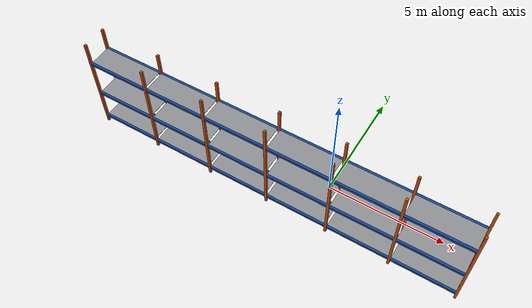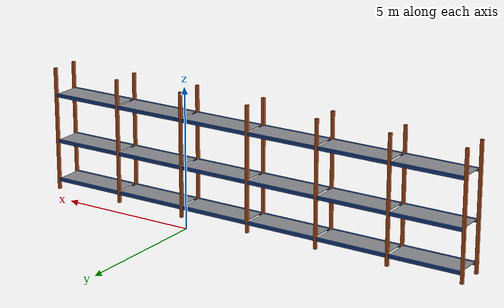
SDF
<sdf version="1.9">
 <world name="warehouse">
  <model name="rack_B">
   <static>true</static>
   <link name="frame">
    <visual name="up_0_f_v">
     <pose>-10 -1.85 2.25 0 0 0</pose>
     <geometry><box><size>0.1 0.1 4.5</size></box></geometry>
     <material>
      <ambient>0.36 0.15 0.04 1</ambient>
      <diffuse>0.72 0.3 0.08 1</diffuse>
      <specular>0.05 0.05 0.05 1</specular>
      <pbr><metal><metalness>0.0</metalness><roughness>0.9</roughness></metal></pbr>
     </material>
    </visual>
    <collision name="up_0_f_c">
     <pose>-10 -1.85 2.25 0 0 0</pose>
     <geometry><box><size>0.1 0.1 4.5</size></box></geometry>
    </collision>
    <visual name="up_0_b_v">
     <pose>-10 -0.85 2.25 0 0 0</pose>
     <geometry><box><size>0.1 0.1 4.5</size></box></geometry>
     <material>
      <ambient>0.36 0.15 0.04 1</ambient>
      <diffuse>0.72 0.3 0.08 1</diffuse>
      <specular>0.05 0.05 0.05 1</specular>
      <pbr><metal><metalness>0.0</metalness><roughness>0.9</roughness></metal></pbr>
     </material>
    </visual>
    <collision name="up_0_b_c">
     <pose>-10 -0.85 2.25 0 0 0</pose>
     <geometry><box><size>0.1 0.1 4.5</size></box></geometry>
    </collision>
    <visual name="up_1_f_v">
     <pose>-7.3 -1.85 2.25 0 0 0</pose>
     <geometry><box><size>0.1 0.1 4.5</size></box></geometry>
     <material>
      <ambient>0.36 0.15 0.04 1</ambient>
      <diffuse>0.72 0.3 0.08 1</diffuse>
      <specular>0.05 0.05 0.05 1</specular>
      <pbr><metal><metalness>0.0</metalness><roughness>0.9</roughness></metal></pbr>
     </material>
    </visual>
    <collision name="up_1_f_c">
     <pose>-7.3 -1.85 2.25 0 0 0</pose>
     <geometry><box><size>0.1 0.1 4.5</size></box></geometry>
    </collision>
    <visual name="up_1_b_v">
     <pose>-7.3 -0.85 2.25 0 0 0</pose>
     <geometry><box><size>0.1 0.1 4.5</size></box></geometry>
     <material>
      <ambient>0.36 0.15 0.04 1</ambient>
      <diffuse>0.72 0.3 0.08 1</diffuse>
      <specular>0.05 0.05 0.05 1</specular>
      <pbr><metal><metalness>0.0</metalness><roughness>0.9</roughness></metal></pbr>
     </material>
    </visual>
    <collision name="up_1_b_c">
     <pose>-7.3 -0.85 2.25 0 0 0</pose>
     <geometry><box><size>0.1 0.1 4.5</size></box></geometry>
    </collision>
    <visual name="up_2_f_v">
     <pose>-4.6 -1.85 2.25 0 0 0</pose>
     <geometry><box><size>0.1 0.1 4.5</size></box></geometry>
     <material>
      <ambient>0.36 0.15 0.04 1</ambient>
      <diffuse>0.72 0.3 0.08 1</diffuse>
      <specular>0.05 0.05 0.05 1</specular>
      <pbr><metal><metalness>0.0</metalness><roughness>0.9</roughness></metal></pbr>
     </material>
    </visual>
    <collision name="up_2_f_c">
     <pose>-4.6 -1.85 2.25 0 0 0</pose>
     <geometry><box><size>0.1 0.1 4.5</size></box></geometry>
    </collision>
    <visual name="up_2_b_v">
     <pose>-4.6 -0.85 2.25 0 0 0</pose>
     <geometry><box><size>0.1 0.1 4.5</size></box></geometry>
     <material>
      <ambient>0.36 0.15 0.04 1</ambient>
      <diffuse>0.72 0.3 0.08 1</diffuse>
      <specular>0.05 0.05 0.05 1</specular>
      <pbr><metal><metalness>0.0</metalness><roughness>0.9</roughness></metal></pbr>
     </material>
    </visual>
    <collision name="up_2_b_c">
     <pose>-4.6 -0.85 2.25 0 0 0</pose>
     <geometry><box><size>0.1 0.1 4.5</size></box></geometry>
    </collision>
    <visual name="up_3_f_v">
     <pose>-1.9 -1.85 2.25 0 0 0</pose>
     <geometry><box><size>0.1 0.1 4.5</size></box></geometry>
     <material>
      <ambient>0.36 0.15 0.04 1</ambient>
      <diffuse>0.72 0.3 0.08 1</diffuse>
      <specular>0.05 0.05 0.05 1</specular>
      <pbr><metal><metalness>0.0</metalness><roughness>0.9</roughness></metal></pbr>
     </material>
    </visual>
    <collision name="up_3_f_c">
     <pose>-1.9 -1.85 2.25 0 0 0</pose>
     <geometry><box><size>0.1 0.1 4.5</size></box></geometry>
    </collision>
    <visual name="up_3_b_v">
     <pose>-1.9 -0.85 2.25 0 0 0</pose>
     <geometry><box><size>0.1 0.1 4.5</size></box></geometry>
     <material>
      <ambient>0.36 0.15 0.04 1</ambient>
      <diffuse>0.72 0.3 0.08 1</diffuse>
      <specular>0.05 0.05 0.05 1</specular>
      <pbr><metal><metalness>0.0</metalness><roughness>0.9</roughness></metal></pbr>
     </material>
    </visual>
    <collision name="up_3_b_c">
     <pose>-1.9 -0.85 2.25 0 0 0</pose>
     <geometry><box><size>0.1 0.1 4.5</size></box></geometry>
    </collision>
    <visual name="up_4_f_v">
     <pose>0.8 -1.85 2.25 0 0 0</pose>
     <geometry><box><size>0.1 0.1 4.5</size></box></geometry>
     <material>
      <ambient>0.36 0.15 0.04 1</ambient>
      <diffuse>0.72 0.3 0.08 1</diffuse>
      <specular>0.05 0.05 0.05 1</specular>
      <pbr><metal><metalness>0.0</metalness><roughness>0.9</roughness></metal></pbr>
     </material>
    </visual>
    <collision name="up_4_f_c">
     <pose>0.8 -1.85 2.25 0 0 0</pose>
     <geometry><box><size>0.1 0.1 4.5</size></box></geometry>
    </collision>
    <visual name="up_4_b_v">
     <pose>0.8 -0.85 2.25 0 0 0</pose>
     <geometry><box><size>0.1 0.1 4.5</size></box></geometry>
     <material>
      <ambient>0.36 0.15 0.04 1</ambient>
      <diffuse>0.72 0.3 0.08 1</diffuse>
      <specular>0.05 0.05 0.05 1</specular>
      <pbr><metal><metalness>0.0</metalness><roughness>0.9</roughness></metal></pbr>
     </material>
    </visual>
    <collision name="up_4_b_c">
     <pose>0.8 -0.85 2.25 0 0 0</pose>
     <geometry><box><size>0.1 0.1 4.5</size></box></geometry>
    </collision>
    <visual name="up_5_f_v">
     <pose>3.5 -1.85 2.25 0 0 0</pose>
     <geometry><box><size>0.1 0.1 4.5</size></box></geometry>
     <material>
      <ambient>0.36 0.15 0.04 1</ambient>
      <diffuse>0.72 0.3 0.08 1</diffuse>
      <specular>0.05 0.05 0.05 1</specular>
      <pbr><metal><metalness>0.0</metalness><roughness>0.9</roughness></metal></pbr>
     </material>
    </visual>
    <collision name="up_5_f_c">
     <pose>3.5 -1.85 2.25 0 0 0</pose>
     <geometry><box><size>0.1 0.1 4.5</size></box></geometry>
    </collision>
    <visual name="up_5_b_v">
     <pose>3.5 -0.85 2.25 0 0 0</pose>
     <geometry><box><size>0.1 0.1 4.5</size></box></geometry>
     <material>
      <ambient>0.36 0.15 0.04 1</ambient>
      <diffuse>0.72 0.3 0.08 1</diffuse>
      <specular>0.05 0.05 0.05 1</specular>
      <pbr><metal><metalness>0.0</metalness><roughness>0.9</roughness></metal></pbr>
     </material>
    </visual>
    <collision name="up_5_b_c">
     <pose>3.5 -0.85 2.25 0 0 0</pose>
     <geometry><box><size>0.1 0.1 4.5</size></box></geometry>
    </collision>
    <visual name="up_6_f_v">
     <pose>6.2 -1.85 2.25 0 0 0</pose>
     <geometry><box><size>0.1 0.1 4.5</size></box></geometry>
     <material>
      <ambient>0.36 0.15 0.04 1</ambient>
      <diffuse>0.72 0.3 0.08 1</diffuse>
      <specular>0.05 0.05 0.05 1</specular>
      <pbr><metal><metalness>0.0</metalness><roughness>0.9</roughness></metal></pbr>
     </material>
    </visual>
    <collision name="up_6_f_c">
     <pose>6.2 -1.85 2.25 0 0 0</pose>
     <geometry><box><size>0.1 0.1 4.5</size></box></geometry>
    </collision>
    <visual name="up_6_b_v">
     <pose>6.2 -0.85 2.25 0 0 0</pose>
     <geometry><box><size>0.1 0.1 4.5</size></box></geometry>
     <material>
      <ambient>0.36 0.15 0.04 1</ambient>
      <diffuse>0.72 0.3 0.08 1</diffuse>
      <specular>0.05 0.05 0.05 1</specular>
      <pbr><metal><metalness>0.0</metalness><roughness>0.9</roughness></metal></pbr>
     </material>
    </visual>
    <collision name="up_6_b_c">
     <pose>6.2 -0.85 2.25 0 0 0</pose>
     <geometry><box><size>0.1 0.1 4.5</size></box></geometry>
    </collision>
    <visual name="beam_0_0_f_v">
     <pose>-8.65 -1.85 0.35 0 0 0</pose>
     <geometry><box><size>2.6 0.1 0.1</size></box></geometry>
     <material>
      <ambient>0.05 0.13 0.275 1</ambient>
      <diffuse>0.1 0.26 0.55 1</diffuse>
      <specular>0.05 0.05 0.05 1</specular>
      <pbr><metal><metalness>0.0</metalness><roughness>0.9</roughness></metal></pbr>
     </material>
    </visual>
    <collision name="beam_0_0_f_c">
     <pose>-8.65 -1.85 0.35 0 0 0</pose>
     <geometry><box><size>2.6 0.1 0.1</size></box></geometry>
    </collision>
    <visual name="beam_0_0_b_v">
     <pose>-8.65 -0.85 0.35 0 0 0</pose>
     <geometry><box><size>2.6 0.1 0.1</size></box></geometry>
     <material>
      <ambient>0.05 0.13 0.275 1</ambient>
      <diffuse>0.1 0.26 0.55 1</diffuse>
      <specular>0.05 0.05 0.05 1</specular>
      <pbr><metal><metalness>0.0</metalness><roughness>0.9</roughness></metal></pbr>
     </material>
    </visual>
    <collision name="beam_0_0_b_c">
     <pose>-8.65 -0.85 0.35 0 0 0</pose>
     <geometry><box><size>2.6 0.1 0.1</size></box></geometry>
    </collision>
    <visual name="deck_0_0_v">
     <pose>-8.65 -1.35 0.39 0 0 0</pose>
     <geometry><box><size>2.6 0.9 0.02</size></box></geometry>
     <material>
      <ambient>0.275 0.28 0.29 1</ambient>
      <diffuse>0.55 0.56 0.58 1</diffuse>
      <specular>0.05 0.05 0.05 1</specular>
      <pbr><metal><metalness>0.0</metalness><roughness>0.9</roughness></metal></pbr>
     </material>
    </visual>
    <collision name="deck_0_0_c">
     <pose>-8.65 -1.35 0.39 0 0 0</pose>
     <geometry><box><size>2.6 0.9 0.02</size></box></geometry>
    </collision>
    <visual name="beam_0_1_f_v">
     <pose>-5.95 -1.85 0.35 0 0 0</pose>
     <geometry><box><size>2.6 0.1 0.1</size></box></geometry>
     <material>
      <ambient>0.05 0.13 0.275 1</ambient>
      <diffuse>0.1 0.26 0.55 1</diffuse>
      <specular>0.05 0.05 0.05 1</specular>
      <pbr><metal><metalness>0.0</metalness><roughness>0.9</roughness></metal></pbr>
     </material>
    </visual>
    <collision name="beam_0_1_f_c">
     <pose>-5.95 -1.85 0.35 0 0 0</pose>
     <geometry><box><size>2.6 0.1 0.1</size></box></geometry>
    </collision>
    <visual name="beam_0_1_b_v">
     <pose>-5.95 -0.85 0.35 0 0 0</pose>
     <geometry><box><size>2.6 0.1 0.1</size></box></geometry>
     <material>
      <ambient>0.05 0.13 0.275 1</ambient>
      <diffuse>0.1 0.26 0.55 1</diffuse>
      <specular>0.05 0.05 0.05 1</specular>
      <pbr><metal><metalness>0.0</metalness><roughness>0.9</roughness></metal></pbr>
     </material>
    </visual>
    <collision name="beam_0_1_b_c">
     <pose>-5.95 -0.85 0.35 0 0 0</pose>
     <geometry><box><size>2.6 0.1 0.1</size></box></geometry>
    </collision>
    <visual name="deck_0_1_v">
     <pose>-5.95 -1.35 0.39 0 0 0</pose>
     <geometry><box><size>2.6 0.9 0.02</size></box></geometry>
     <material>
      <ambient>0.275 0.28 0.29 1</ambient>
      <diffuse>0.55 0.56 0.58 1</diffuse>
      <specular>0.05 0.05 0.05 1</specular>
      <pbr><metal><metalness>0.0</metalness><roughness>0.9</roughness></metal></pbr>
     </material>
    </visual>
    <collision name="deck_0_1_c">
     <pose>-5.95 -1.35 0.39 0 0 0</pose>
     <geometry><box><size>2.6 0.9 0.02</size></box></geometry>
    </collision>
    <visual name="beam_0_2_f_v">
     <pose>-3.25 -1.85 0.35 0 0 0</pose>
     <geometry><box><size>2.6 0.1 0.1</size></box></geometry>
     <material>
      <ambient>0.05 0.13 0.275 1</ambient>
      <diffuse>0.1 0.26 0.55 1</diffuse>
      <specular>0.05 0.05 0.05 1</specular>
      <pbr><metal><metalness>0.0</metalness><roughness>0.9</roughness></metal></pbr>
     </material>
    </visual>
    <collision name="beam_0_2_f_c">
     <pose>-3.25 -1.85 0.35 0 0 0</pose>
     <geometry><box><size>2.6 0.1 0.1</size></box></geometry>
    </collision>
    <visual name="beam_0_2_b_v">
     <pose>-3.25 -0.85 0.35 0 0 0</pose>
     <geometry><box><size>2.6 0.1 0.1</size></box></geometry>
     <material>
      <ambient>0.05 0.13 0.275 1</ambient>
      <diffuse>0.1 0.26 0.55 1</diffuse>
      <specular>0.05 0.05 0.05 1</specular>
      <pbr><metal><metalness>0.0</metalness><roughness>0.9</roughness></metal></pbr>
     </material>
    </visual>
    <collision name="beam_0_2_b_c">
     <pose>-3.25 -0.85 0.35 0 0 0</pose>
     <geometry><box><size>2.6 0.1 0.1</size></box></geometry>
    </collision>
    <visual name="deck_0_2_v">
     <pose>-3.25 -1.35 0.39 0 0 0</pose>
     <geometry><box><size>2.6 0.9 0.02</size></box></geometry>
     <material>
      <ambient>0.275 0.28 0.29 1</ambient>
      <diffuse>0.55 0.56 0.58 1</diffuse>
      <specular>0.05 0.05 0.05 1</specular>
      <pbr><metal><metalness>0.0</metalness><roughness>0.9</roughness></metal></pbr>
     </material>
    </visual>
    <collision name="deck_0_2_c">
     <pose>-3.25 -1.35 0.39 0 0 0</pose>
     <geometry><box><size>2.6 0.9 0.02</size></box></geometry>
    </collision>
    <visual name="beam_0_3_f_v">
     <pose>-0.55 -1.85 0.35 0 0 0</pose>
     <geometry><box><size>2.6 0.1 0.1</size></box></geometry>
     <material>
      <ambient>0.05 0.13 0.275 1</ambient>
      <diffuse>0.1 0.26 0.55 1</diffuse>
      <specular>0.05 0.05 0.05 1</specular>
      <pbr><metal><metalness>0.0</metalness><roughness>0.9</roughness></metal></pbr>
     </material>
    </visual>
    <collision name="beam_0_3_f_c">
     <pose>-0.55 -1.85 0.35 0 0 0</pose>
     <geometry><box><size>2.6 0.1 0.1</size></box></geometry>
    </collision>
    <visual name="beam_0_3_b_v">
     <pose>-0.55 -0.85 0.35 0 0 0</pose>
     <geometry><box><size>2.6 0.1 0.1</size></box></geometry>
     <material>
      <ambient>0.05 0.13 0.275 1</ambient>
      <diffuse>0.1 0.26 0.55 1</diffuse>
      <specular>0.05 0.05 0.05 1</specular>
      <pbr><metal><metalness>0.0</metalness><roughness>0.9</roughness></metal></pbr>
     </material>
    </visual>
    <collision name="beam_0_3_b_c">
     <pose>-0.55 -0.85 0.35 0 0 0</pose>
     <geometry><box><size>2.6 0.1 0.1</size></box></geometry>
    </collision>
    <visual name="deck_0_3_v">
     <pose>-0.55 -1.35 0.39 0 0 0</pose>
     <geometry><box><size>2.6 0.9 0.02</size></box></geometry>
     <material>
      <ambient>0.275 0.28 0.29 1</ambient>
      <diffuse>0.55 0.56 0.58 1</diffuse>
      <specular>0.05 0.05 0.05 1</specular>
      <pbr><metal><metalness>0.0</metalness><roughness>0.9</roughness></metal></pbr>
     </material>
    </visual>
    <collision name="deck_0_3_c">
     <pose>-0.55 -1.35 0.39 0 0 0</pose>
     <geometry><box><size>2.6 0.9 0.02</size></box></geometry>
    </collision>
    <visual name="beam_0_4_f_v">
     <pose>2.15 -1.85 0.35 0 0 0</pose>
     <geometry><box><size>2.6 0.1 0.1</size></box></geometry>
     <material>
      <ambient>0.05 0.13 0.275 1</ambient>
      <diffuse>0.1 0.26 0.55 1</diffuse>
      <specular>0.05 0.05 0.05 1</specular>
      <pbr><metal><metalness>0.0</metalness><roughness>0.9</roughness></metal></pbr>
     </material>
    </visual>
    <collision name="beam_0_4_f_c">
     <pose>2.15 -1.85 0.35 0 0 0</pose>
     <geometry><box><size>2.6 0.1 0.1</size></box></geometry>
    </collision>
    <visual name="beam_0_4_b_v">
     <pose>2.15 -0.85 0.35 0 0 0</pose>
     <geometry><box><size>2.6 0.1 0.1</size></box></geometry>
     <material>
      <ambient>0.05 0.13 0.275 1</ambient>
      <diffuse>0.1 0.26 0.55 1</diffuse>
      <specular>0.05 0.05 0.05 1</specular>
      <pbr><metal><metalness>0.0</metalness><roughness>0.9</roughness></metal></pbr>
     </material>
    </visual>
    <collision name="beam_0_4_b_c">
     <pose>2.15 -0.85 0.35 0 0 0</pose>
     <geometry><box><size>2.6 0.1 0.1</size></box></geometry>
    </collision>
    <visual name="deck_0_4_v">
     <pose>2.15 -1.35 0.39 0 0 0</pose>
     <geometry><box><size>2.6 0.9 0.02</size></box></geometry>
     <material>
      <ambient>0.275 0.28 0.29 1</ambient>
      <diffuse>0.55 0.56 0.58 1</diffuse>
      <specular>0.05 0.05 0.05 1</specular>
      <pbr><metal><metalness>0.0</metalness><roughness>0.9</roughness></metal></pbr>
     </material>
    </visual>
    <collision name="deck_0_4_c">
     <pose>2.15 -1.35 0.39 0 0 0</pose>
     <geometry><box><size>2.6 0.9 0.02</size></box></geometry>
    </collision>
    <visual name="beam_0_5_f_v">
     <pose>4.85 -1.85 0.35 0 0 0</pose>
     <geometry><box><size>2.6 0.1 0.1</size></box></geometry>
     <material>
      <ambient>0.05 0.13 0.275 1</ambient>
      <diffuse>0.1 0.26 0.55 1</diffuse>
      <specular>0.05 0.05 0.05 1</specular>
      <pbr><metal><metalness>0.0</metalness><roughness>0.9</roughness></metal></pbr>
     </material>
    </visual>
    <collision name="beam_0_5_f_c">
     <pose>4.85 -1.85 0.35 0 0 0</pose>
     <geometry><box><size>2.6 0.1 0.1</size></box></geometry>
    </collision>
    <visual name="beam_0_5_b_v">
     <pose>4.85 -0.85 0.35 0 0 0</pose>
     <geometry><box><size>2.6 0.1 0.1</size></box></geometry>
     <material>
      <ambient>0.05 0.13 0.275 1</ambient>
      <diffuse>0.1 0.26 0.55 1</diffuse>
      <specular>0.05 0.05 0.05 1</specular>
      <pbr><metal><metalness>0.0</metalness><roughness>0.9</roughness></metal></pbr>
     </material>
    </visual>
    <collision name="beam_0_5_b_c">
     <pose>4.85 -0.85 0.35 0 0 0</pose>
     <geometry><box><size>2.6 0.1 0.1</size></box></geometry>
    </collision>
    <visual name="deck_0_5_v">
     <pose>4.85 -1.35 0.39 0 0 0</pose>
     <geometry><box><size>2.6 0.9 0.02</size></box></geometry>
     <material>
      <ambient>0.275 0.28 0.29 1</ambient>
      <diffuse>0.55 0.56 0.58 1</diffuse>
      <specular>0.05 0.05 0.05 1</specular>
      <pbr><metal><metalness>0.0</metalness><roughness>0.9</roughness></metal></pbr>
     </material>
    </visual>
    <collision name="deck_0_5_c">
     <pose>4.85 -1.35 0.39 0 0 0</pose>
     <geometry><box><size>2.6 0.9 0.02</size></box></geometry>
    </collision>
    <visual name="beam_1_0_f_v">
     <pose>-8.65 -1.85 1.8 0 0 0</pose>
     <geometry><box><size>2.6 0.1 0.1</size></box></geometry>
     <material>
      <ambient>0.05 0.13 0.275 1</ambient>
      <diffuse>0.1 0.26 0.55 1</diffuse>
      <specular>0.05 0.05 0.05 1</specular>
      <pbr><metal><metalness>0.0</metalness><roughness>0.9</roughness></metal></pbr>
     </material>
    </visual>
    <collision name="beam_1_0_f_c">
     <pose>-8.65 -1.85 1.8 0 0 0</pose>
     <geometry><box><size>2.6 0.1 0.1</size></box></geometry>
    </collision>
    <visual name="beam_1_0_b_v">
     <pose>-8.65 -0.85 1.8 0 0 0</pose>
     <geometry><box><size>2.6 0.1 0.1</size></box></geometry>
     <material>
      <ambient>0.05 0.13 0.275 1</ambient>
      <diffuse>0.1 0.26 0.55 1</diffuse>
      <specular>0.05 0.05 0.05 1</specular>
      <pbr><metal><metalness>0.0</metalness><roughness>0.9</roughness></metal></pbr>
     </material>
    </visual>
    <collision name="beam_1_0_b_c">
     <pose>-8.65 -0.85 1.8 0 0 0</pose>
     <geometry><box><size>2.6 0.1 0.1</size></box></geometry>
    </collision>
    <visual name="deck_1_0_v">
     <pose>-8.65 -1.35 1.84 0 0 0</pose>
     <geometry><box><size>2.6 0.9 0.02</size></box></geometry>
     <material>
      <ambient>0.275 0.28 0.29 1</ambient>
      <diffuse>0.55 0.56 0.58 1</diffuse>
      <specular>0.05 0.05 0.05 1</specular>
      <pbr><metal><metalness>0.0</metalness><roughness>0.9</roughness></metal></pbr>
     </material>
    </visual>
    <collision name="deck_1_0_c">
     <pose>-8.65 -1.35 1.84 0 0 0</pose>
     <geometry><box><size>2.6 0.9 0.02</size></box></geometry>
    </collision>
    <visual name="beam_1_1_f_v">
     <pose>-5.95 -1.85 1.8 0 0 0</pose>
     <geometry><box><size>2.6 0.1 0.1</size></box></geometry>
     <material>
      <ambient>0.05 0.13 0.275 1</ambient>
      <diffuse>0.1 0.26 0.55 1</diffuse>
      <specular>0.05 0.05 0.05 1</specular>
      <pbr><metal><metalness>0.0</metalness><roughness>0.9</roughness></metal></pbr>
     </material>
    </visual>
    <collision name="beam_1_1_f_c">
     <pose>-5.95 -1.85 1.8 0 0 0</pose>
     <geometry><box><size>2.6 0.1 0.1</size></box></geometry>
    </collision>
    <visual name="beam_1_1_b_v">
     <pose>-5.95 -0.85 1.8 0 0 0</pose>
     <geometry><box><size>2.6 0.1 0.1</size></box></geometry>
     <material>
      <ambient>0.05 0.13 0.275 1</ambient>
      <diffuse>0.1 0.26 0.55 1</diffuse>
      <specular>0.05 0.05 0.05 1</specular>
      <pbr><metal><metalness>0.0</metalness><roughness>0.9</roughness></metal></pbr>
     </material>
    </visual>
    <collision name="beam_1_1_b_c">
     <pose>-5.95 -0.85 1.8 0 0 0</pose>
     <geometry><box><size>2.6 0.1 0.1</size></box></geometry>
    </collision>
    <visual name="deck_1_1_v">
     <pose>-5.95 -1.35 1.84 0 0 0</pose>
     <geometry><box><size>2.6 0.9 0.02</size></box></geometry>
     <material>
      <ambient>0.275 0.28 0.29 1</ambient>
      <diffuse>0.55 0.56 0.58 1</diffuse>
      <specular>0.05 0.05 0.05 1</specular>
      <pbr><metal><metalness>0.0</metalness><roughness>0.9</roughness></metal></pbr>
     </material>
    </visual>
    <collision name="deck_1_1_c">
     <pose>-5.95 -1.35 1.84 0 0 0</pose>
     <geometry><box><size>2.6 0.9 0.02</size></box></geometry>
    </collision>
    <visual name="beam_1_2_f_v">
     <pose>-3.25 -1.85 1.8 0 0 0</pose>
     <geometry><box><size>2.6 0.1 0.1</size></box></geometry>
     <material>
      <ambient>0.05 0.13 0.275 1</ambient>
      <diffuse>0.1 0.26 0.55 1</diffuse>
      <specular>0.05 0.05 0.05 1</specular>
      <pbr><metal><metalness>0.0</metalness><roughness>0.9</roughness></metal></pbr>
     </material>
    </visual>
    <collision name="beam_1_2_f_c">
     <pose>-3.25 -1.85 1.8 0 0 0</pose>
     <geometry><box><size>2.6 0.1 0.1</size></box></geometry>
    </collision>
    <visual name="beam_1_2_b_v">
     <pose>-3.25 -0.85 1.8 0 0 0</pose>
     <geometry><box><size>2.6 0.1 0.1</size></box></geometry>
     <material>
      <ambient>0.05 0.13 0.275 1</ambient>
      <diffuse>0.1 0.26 0.55 1</diffuse>
      <specular>0.05 0.05 0.05 1</specular>
      <pbr><metal><metalness>0.0</metalness><roughness>0.9</roughness></metal></pbr>
     </material>
    </visual>
    <collision name="beam_1_2_b_c">
     <pose>-3.25 -0.85 1.8 0 0 0</pose>
     <geometry><box><size>2.6 0.1 0.1</size></box></geometry>
    </collision>
    <visual name="deck_1_2_v">
     <pose>-3.25 -1.35 1.84 0 0 0</pose>
     <geometry><box><size>2.6 0.9 0.02</size></box></geometry>
     <material>
      <ambient>0.275 0.28 0.29 1</ambient>
      <diffuse>0.55 0.56 0.58 1</diffuse>
      <specular>0.05 0.05 0.05 1</specular>
      <pbr><metal><metalness>0.0</metalness><roughness>0.9</roughness></metal></pbr>
     </material>
    </visual>
    <collision name="deck_1_2_c">
     <pose>-3.25 -1.35 1.84 0 0 0</pose>
     <geometry><box><size>2.6 0.9 0.02</size></box></geometry>
    </collision>
    <visual name="beam_1_3_f_v">
     <pose>-0.55 -1.85 1.8 0 0 0</pose>
     <geometry><box><size>2.6 0.1 0.1</size></box></geometry>
     <material>
      <ambient>0.05 0.13 0.275 1</ambient>
      <diffuse>0.1 0.26 0.55 1</diffuse>
      <specular>0.05 0.05 0.05 1</specular>
      <pbr><metal><metalness>0.0</metalness><roughness>0.9</roughness></metal></pbr>
     </material>
    </visual>
    <collision name="beam_1_3_f_c">
     <pose>-0.55 -1.85 1.8 0 0 0</pose>
     <geometry><box><size>2.6 0.1 0.1</size></box></geometry>
    </collision>
    <visual name="beam_1_3_b_v">
     <pose>-0.55 -0.85 1.8 0 0 0</pose>
     <geometry><box><size>2.6 0.1 0.1</size></box></geometry>
     <material>
      <ambient>0.05 0.13 0.275 1</ambient>
      <diffuse>0.1 0.26 0.55 1</diffuse>
      <specular>0.05 0.05 0.05 1</specular>
      <pbr><metal><metalness>0.0</metalness><roughness>0.9</roughness></metal></pbr>
     </material>
    </visual>
    <collision name="beam_1_3_b_c">
     <pose>-0.55 -0.85 1.8 0 0 0</pose>
     <geometry><box><size>2.6 0.1 0.1</size></box></geometry>
    </collision>
    <visual name="deck_1_3_v">
     <pose>-0.55 -1.35 1.84 0 0 0</pose>
     <geometry><box><size>2.6 0.9 0.02</size></box></geometry>
     <material>
      <ambient>0.275 0.28 0.29 1</ambient>
      <diffuse>0.55 0.56 0.58 1</diffuse>
      <specular>0.05 0.05 0.05 1</specular>
      <pbr><metal><metalness>0.0</metalness><roughness>0.9</roughness></metal></pbr>
     </material>
    </visual>
    <collision name="deck_1_3_c">
     <pose>-0.55 -1.35 1.84 0 0 0</pose>
     <geometry><box><size>2.6 0.9 0.02</size></box></geometry>
    </collision>
    <visual name="beam_1_4_f_v">
     <pose>2.15 -1.85 1.8 0 0 0</pose>
     <geometry><box><size>2.6 0.1 0.1</size></box></geometry>
     <material>
      <ambient>0.05 0.13 0.275 1</ambient>
      <diffuse>0.1 0.26 0.55 1</diffuse>
      <specular>0.05 0.05 0.05 1</specular>
      <pbr><metal><metalness>0.0</metalness><roughness>0.9</roughness></metal></pbr>
     </material>
    </visual>
    <collision name="beam_1_4_f_c">
     <pose>2.15 -1.85 1.8 0 0 0</pose>
     <geometry><box><size>2.6 0.1 0.1</size></box></geometry>
    </collision>
    <visual name="beam_1_4_b_v">
     <pose>2.15 -0.85 1.8 0 0 0</pose>
     <geometry><box><size>2.6 0.1 0.1</size></box></geometry>
     <material>
      <ambient>0.05 0.13 0.275 1</ambient>
      <diffuse>0.1 0.26 0.55 1</diffuse>
      <specular>0.05 0.05 0.05 1</specular>
      <pbr><metal><metalness>0.0</metalness><roughness>0.9</roughness></metal></pbr>
     </material>
    </visual>
    <collision name="beam_1_4_b_c">
     <pose>2.15 -0.85 1.8 0 0 0</pose>
     <geometry><box><size>2.6 0.1 0.1</size></box></geometry>
    </collision>
    <visual name="deck_1_4_v">
     <pose>2.15 -1.35 1.84 0 0 0</pose>
     <geometry><box><size>2.6 0.9 0.02</size></box></geometry>
     <material>
      <ambient>0.275 0.28 0.29 1</ambient>
      <diffuse>0.55 0.56 0.58 1</diffuse>
      <specular>0.05 0.05 0.05 1</specular>
      <pbr><metal><metalness>0.0</metalness><roughness>0.9</roughness></metal></pbr>
     </material>
    </visual>
    <collision name="deck_1_4_c">
     <pose>2.15 -1.35 1.84 0 0 0</pose>
     <geometry><box><size>2.6 0.9 0.02</size></box></geometry>
    </collision>
    <visual name="beam_1_5_f_v">
     <pose>4.85 -1.85 1.8 0 0 0</pose>
     <geometry><box><size>2.6 0.1 0.1</size></box></geometry>
     <material>
      <ambient>0.05 0.13 0.275 1</ambient>
      <diffuse>0.1 0.26 0.55 1</diffuse>
      <specular>0.05 0.05 0.05 1</specular>
      <pbr><metal><metalness>0.0</metalness><roughness>0.9</roughness></metal></pbr>
     </material>
    </visual>
    <collision name="beam_1_5_f_c">
     <pose>4.85 -1.85 1.8 0 0 0</pose>
     <geometry><box><size>2.6 0.1 0.1</size></box></geometry>
    </collision>
    <visual name="beam_1_5_b_v">
     <pose>4.85 -0.85 1.8 0 0 0</pose>
     <geometry><box><size>2.6 0.1 0.1</size></box></geometry>
     <material>
      <ambient>0.05 0.13 0.275 1</ambient>
      <diffuse>0.1 0.26 0.55 1</diffuse>
      <specular>0.05 0.05 0.05 1</specular>
      <pbr><metal><metalness>0.0</metalness><roughness>0.9</roughness></metal></pbr>
     </material>
    </visual>
    <collision name="beam_1_5_b_c">
     <pose>4.85 -0.85 1.8 0 0 0</pose>
     <geometry><box><size>2.6 0.1 0.1</size></box></geometry>
    </collision>
    <visual name="deck_1_5_v">
     <pose>4.85 -1.35 1.84 0 0 0</pose>
     <geometry><box><size>2.6 0.9 0.02</size></box></geometry>
     <material>
      <ambient>0.275 0.28 0.29 1</ambient>
      <diffuse>0.55 0.56 0.58 1</diffuse>
      <specular>0.05 0.05 0.05 1</specular>
      <pbr><metal><metalness>0.0</metalness><roughness>0.9</roughness></metal></pbr>
     </material>
    </visual>
    <collision name="deck_1_5_c">
     <pose>4.85 -1.35 1.84 0 0 0</pose>
     <geometry><box><size>2.6 0.9 0.02</size></box></geometry>
    </collision>
    <visual name="beam_2_0_f_v">
     <pose>-8.65 -1.85 3.5 0 0 0</pose>
     <geometry><box><size>2.6 0.1 0.1</size></box></geometry>
     <material>
      <ambient>0.05 0.13 0.275 1</ambient>
      <diffuse>0.1 0.26 0.55 1</diffuse>
      <specular>0.05 0.05 0.05 1</specular>
      <pbr><metal><metalness>0.0</metalness><roughness>0.9</roughness></metal></pbr>
     </material>
    </visual>
    <collision name="beam_2_0_f_c">
     <pose>-8.65 -1.85 3.5 0 0 0</pose>
     <geometry><box><size>2.6 0.1 0.1</size></box></geometry>
    </collision>
    <visual name="beam_2_0_b_v">
     <pose>-8.65 -0.85 3.5 0 0 0</pose>
     <geometry><box><size>2.6 0.1 0.1</size></box></geometry>
     <material>
      <ambient>0.05 0.13 0.275 1</ambient>
      <diffuse>0.1 0.26 0.55 1</diffuse>
      <specular>0.05 0.05 0.05 1</specular>
      <pbr><metal><metalness>0.0</metalness><roughness>0.9</roughness></metal></pbr>
     </material>
    </visual>
    <collision name="beam_2_0_b_c">
     <pose>-8.65 -0.85 3.5 0 0 0</pose>
     <geometry><box><size>2.6 0.1 0.1</size></box></geometry>
    </collision>
    <visual name="deck_2_0_v">
     <pose>-8.65 -1.35 3.54 0 0 0</pose>
     <geometry><box><size>2.6 0.9 0.02</size></box></geometry>
     <material>
      <ambient>0.275 0.28 0.29 1</ambient>
      <diffuse>0.55 0.56 0.58 1</diffuse>
      <specular>0.05 0.05 0.05 1</specular>
      <pbr><metal><metalness>0.0</metalness><roughness>0.9</roughness></metal></pbr>
     </material>
    </visual>
    <collision name="deck_2_0_c">
     <pose>-8.65 -1.35 3.54 0 0 0</pose>
     <geometry><box><size>2.6 0.9 0.02</size></box></geometry>
    </collision>
    <visual name="beam_2_1_f_v">
     <pose>-5.95 -1.85 3.5 0 0 0</pose>
     <geometry><box><size>2.6 0.1 0.1</size></box></geometry>
     <material>
      <ambient>0.05 0.13 0.275 1</ambient>
      <diffuse>0.1 0.26 0.55 1</diffuse>
      <specular>0.05 0.05 0.05 1</specular>
      <pbr><metal><metalness>0.0</metalness><roughness>0.9</roughness></metal></pbr>
     </material>
    </visual>
    <collision name="beam_2_1_f_c">
     <pose>-5.95 -1.85 3.5 0 0 0</pose>
     <geometry><box><size>2.6 0.1 0.1</size></box></geometry>
    </collision>
    <visual name="beam_2_1_b_v">
     <pose>-5.95 -0.85 3.5 0 0 0</pose>
     <geometry><box><size>2.6 0.1 0.1</size></box></geometry>
     <material>
      <ambient>0.05 0.13 0.275 1</ambient>
      <diffuse>0.1 0.26 0.55 1</diffuse>
      <specular>0.05 0.05 0.05 1</specular>
      <pbr><metal><metalness>0.0</metalness><roughness>0.9</roughness></metal></pbr>
     </material>
    </visual>
    <collision name="beam_2_1_b_c">
     <pose>-5.95 -0.85 3.5 0 0 0</pose>
     <geometry><box><size>2.6 0.1 0.1</size></box></geometry>
    </collision>
    <visual name="deck_2_1_v">
     <pose>-5.95 -1.35 3.54 0 0 0</pose>
     <geometry><box><size>2.6 0.9 0.02</size></box></geometry>
     <material>
      <ambient>0.275 0.28 0.29 1</ambient>
      <diffuse>0.55 0.56 0.58 1</diffuse>
      <specular>0.05 0.05 0.05 1</specular>
      <pbr><metal><metalness>0.0</metalness><roughness>0.9</roughness></metal></pbr>
     </material>
    </visual>
    <collision name="deck_2_1_c">
     <pose>-5.95 -1.35 3.54 0 0 0</pose>
     <geometry><box><size>2.6 0.9 0.02</size></box></geometry>
    </collision>
    <visual name="beam_2_2_f_v">
     <pose>-3.25 -1.85 3.5 0 0 0</pose>
     <geometry><box><size>2.6 0.1 0.1</size></box></geometry>
     <material>
      <ambient>0.05 0.13 0.275 1</ambient>
      <diffuse>0.1 0.26 0.55 1</diffuse>
      <specular>0.05 0.05 0.05 1</specular>
      <pbr><metal><metalness>0.0</metalness><roughness>0.9</roughness></metal></pbr>
     </material>
    </visual>
    <collision name="beam_2_2_f_c">
     <pose>-3.25 -1.85 3.5 0 0 0</pose>
     <geometry><box><size>2.6 0.1 0.1</size></box></geometry>
    </collision>
    <visual name="beam_2_2_b_v">
     <pose>-3.25 -0.85 3.5 0 0 0</pose>
     <geometry><box><size>2.6 0.1 0.1</size></box></geometry>
     <material>
      <ambient>0.05 0.13 0.275 1</ambient>
      <diffuse>0.1 0.26 0.55 1</diffuse>
      <specular>0.05 0.05 0.05 1</specular>
      <pbr><metal><metalness>0.0</metalness><roughness>0.9</roughness></metal></pbr>
     </material>
    </visual>
    <collision name="beam_2_2_b_c">
     <pose>-3.25 -0.85 3.5 0 0 0</pose>
     <geometry><box><size>2.6 0.1 0.1</size></box></geometry>
    </collision>
    <visual name="deck_2_2_v">
     <pose>-3.25 -1.35 3.54 0 0 0</pose>
     <geometry><box><size>2.6 0.9 0.02</size></box></geometry>
     <material>
      <ambient>0.275 0.28 0.29 1</ambient>
      <diffuse>0.55 0.56 0.58 1</diffuse>
      <specular>0.05 0.05 0.05 1</specular>
      <pbr><metal><metalness>0.0</metalness><roughness>0.9</roughness></metal></pbr>
     </material>
    </visual>
    <collision name="deck_2_2_c">
     <pose>-3.25 -1.35 3.54 0 0 0</pose>
     <geometry><box><size>2.6 0.9 0.02</size></box></geometry>
    </collision>
    <visual name="beam_2_3_f_v">
     <pose>-0.55 -1.85 3.5 0 0 0</pose>
     <geometry><box><size>2.6 0.1 0.1</size></box></geometry>
     <material>
      <ambient>0.05 0.13 0.275 1</ambient>
      <diffuse>0.1 0.26 0.55 1</diffuse>
      <specular>0.05 0.05 0.05 1</specular>
      <pbr><metal><metalness>0.0</metalness><roughness>0.9</roughness></metal></pbr>
     </material>
    </visual>
    <collision name="beam_2_3_f_c">
     <pose>-0.55 -1.85 3.5 0 0 0</pose>
     <geometry><box><size>2.6 0.1 0.1</size></box></geometry>
    </collision>
    <visual name="beam_2_3_b_v">
     <pose>-0.55 -0.85 3.5 0 0 0</pose>
     <geometry><box><size>2.6 0.1 0.1</size></box></geometry>
     <material>
      <ambient>0.05 0.13 0.275 1</ambient>
      <diffuse>0.1 0.26 0.55 1</diffuse>
      <specular>0.05 0.05 0.05 1</specular>
      <pbr><metal><metalness>0.0</metalness><roughness>0.9</roughness></metal></pbr>
     </material>
    </visual>
    <collision name="beam_2_3_b_c">
     <pose>-0.55 -0.85 3.5 0 0 0</pose>
     <geometry><box><size>2.6 0.1 0.1</size></box></geometry>
    </collision>
    <visual name="deck_2_3_v">
     <pose>-0.55 -1.35 3.54 0 0 0</pose>
     <geometry><box><size>2.6 0.9 0.02</size></box></geometry>
     <material>
      <ambient>0.275 0.28 0.29 1</ambient>
      <diffuse>0.55 0.56 0.58 1</diffuse>
      <specular>0.05 0.05 0.05 1</specular>
      <pbr><metal><metalness>0.0</metalness><roughness>0.9</roughness></metal></pbr>
     </material>
    </visual>
    <collision name="deck_2_3_c">
     <pose>-0.55 -1.35 3.54 0 0 0</pose>
     <geometry><box><size>2.6 0.9 0.02</size></box></geometry>
    </collision>
    <visual name="beam_2_4_f_v">
     <pose>2.15 -1.85 3.5 0 0 0</pose>
     <geometry><box><size>2.6 0.1 0.1</size></box></geometry>
     <material>
      <ambient>0.05 0.13 0.275 1</ambient>
      <diffuse>0.1 0.26 0.55 1</diffuse>
      <specular>0.05 0.05 0.05 1</specular>
      <pbr><metal><metalness>0.0</metalness><roughness>0.9</roughness></metal></pbr>
     </material>
    </visual>
    <collision name="beam_2_4_f_c">
     <pose>2.15 -1.85 3.5 0 0 0</pose>
     <geometry><box><size>2.6 0.1 0.1</size></box></geometry>
    </collision>
    <visual name="beam_2_4_b_v">
     <pose>2.15 -0.85 3.5 0 0 0</pose>
     <geometry><box><size>2.6 0.1 0.1</size></box></geometry>
     <material>
      <ambient>0.05 0.13 0.275 1</ambient>
      <diffuse>0.1 0.26 0.55 1</diffuse>
      <specular>0.05 0.05 0.05 1</specular>
      <pbr><metal><metalness>0.0</metalness><roughness>0.9</roughness></metal></pbr>
     </material>
    </visual>
    <collision name="beam_2_4_b_c">
     <pose>2.15 -0.85 3.5 0 0 0</pose>
     <geometry><box><size>2.6 0.1 0.1</size></box></geometry>
    </collision>
    <visual name="deck_2_4_v">
     <pose>2.15 -1.35 3.54 0 0 0</pose>
     <geometry><box><size>2.6 0.9 0.02</size></box></geometry>
     <material>
      <ambient>0.275 0.28 0.29 1</ambient>
      <diffuse>0.55 0.56 0.58 1</diffuse>
      <specular>0.05 0.05 0.05 1</specular>
      <pbr><metal><metalness>0.0</metalness><roughness>0.9</roughness></metal></pbr>
     </material>
    </visual>
    <collision name="deck_2_4_c">
     <pose>2.15 -1.35 3.54 0 0 0</pose>
     <geometry><box><size>2.6 0.9 0.02</size></box></geometry>
    </collision>
    <visual name="beam_2_5_f_v">
     <pose>4.85 -1.85 3.5 0 0 0</pose>
     <geometry><box><size>2.6 0.1 0.1</size></box></geometry>
     <material>
      <ambient>0.05 0.13 0.275 1</ambient>
      <diffuse>0.1 0.26 0.55 1</diffuse>
      <specular>0.05 0.05 0.05 1</specular>
      <pbr><metal><metalness>0.0</metalness><roughness>0.9</roughness></metal></pbr>
     </material>
    </visual>
    <collision name="beam_2_5_f_c">
     <pose>4.85 -1.85 3.5 0 0 0</pose>
     <geometry><box><size>2.6 0.1 0.1</size></box></geometry>
    </collision>
    <visual name="beam_2_5_b_v">
     <pose>4.85 -0.85 3.5 0 0 0</pose>
     <geometry><box><size>2.6 0.1 0.1</size></box></geometry>
     <material>
      <ambient>0.05 0.13 0.275 1</ambient>
      <diffuse>0.1 0.26 0.55 1</diffuse>
      <specular>0.05 0.05 0.05 1</specular>
      <pbr><metal><metalness>0.0</metalness><roughness>0.9</roughness></metal></pbr>
     </material>
    </visual>
    <collision name="beam_2_5_b_c">
     <pose>4.85 -0.85 3.5 0 0 0</pose>
     <geometry><box><size>2.6 0.1 0.1</size></box></geometry>
    </collision>
    <visual name="deck_2_5_v">
     <pose>4.85 -1.35 3.54 0 0 0</pose>
     <geometry><box><size>2.6 0.9 0.02</size></box></geometry>
     <material>
      <ambient>0.275 0.28 0.29 1</ambient>
      <diffuse>0.55 0.56 0.58 1</diffuse>
      <specular>0.05 0.05 0.05 1</specular>
      <pbr><metal><metalness>0.0</metalness><roughness>0.9</roughness></metal></pbr>
     </material>
    </visual>
    <collision name="deck_2_5_c">
     <pose>4.85 -1.35 3.54 0 0 0</pose>
     <geometry><box><size>2.6 0.9 0.02</size></box></geometry>
    </collision>
   </link>
  </model>
 </world>
</sdf>
